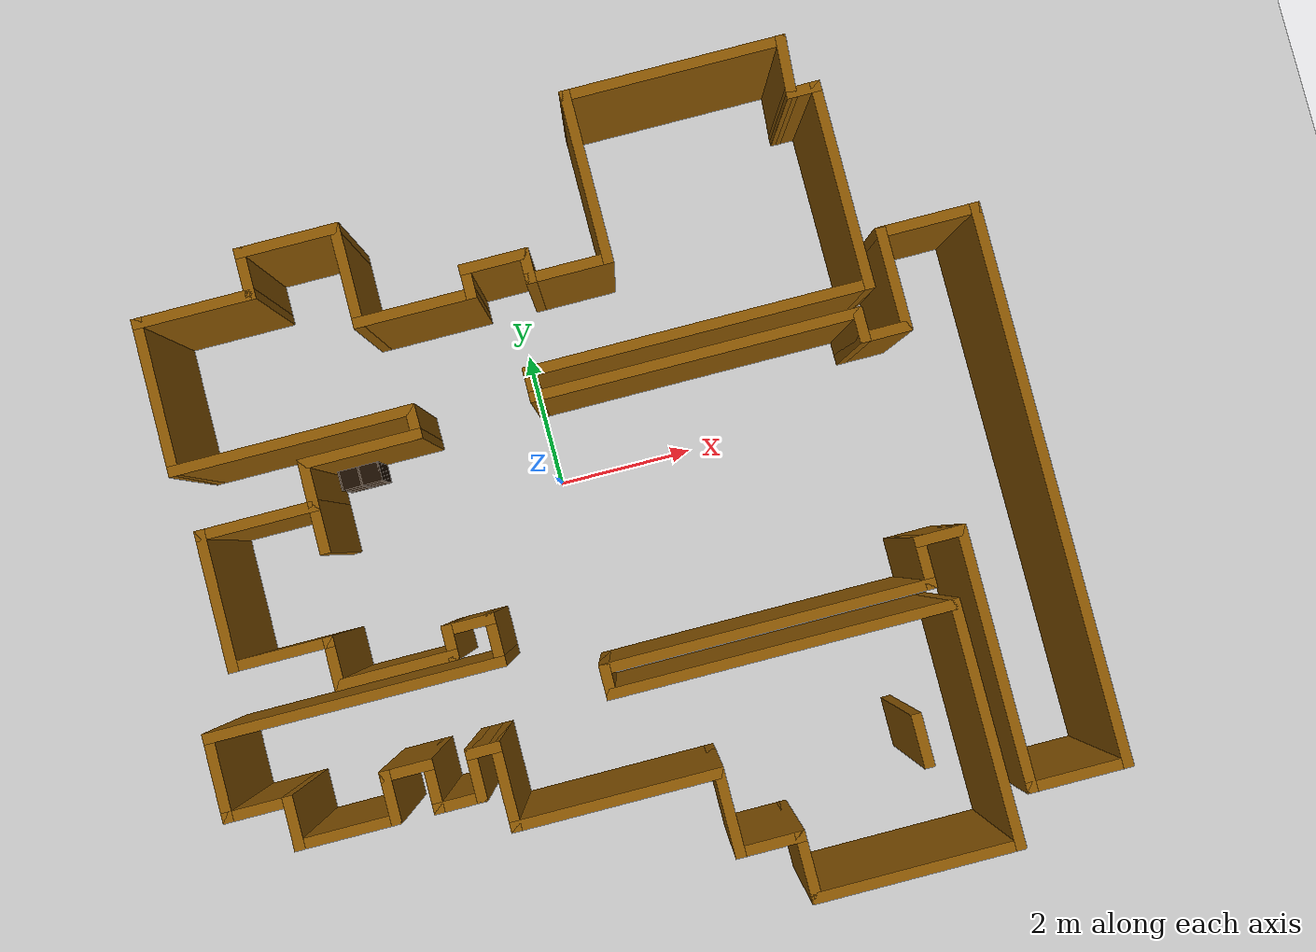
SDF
<sdf version="1.6">
 <world name="default">
  <light name="sun" type="directional">
   <pose>0 0 10 0 -0 0</pose>
   <diffuse>0.8 0.8 0.8 1</diffuse>
   <specular>0.2 0.2 0.2 1</specular>
   <attenuation>
    <range>1000</range>
    <constant>0.9</constant>
    <linear>0.01</linear>
    <quadratic>0.001</quadratic>
   </attenuation>
   <direction>-0.5 0.1 -0.9</direction>
  </light>
  <model name="ground_plane">
   <static>1</static>
   <link name="link">
    <collision name="collision">
     <geometry><plane><normal>0 0 1</normal><size>100 100</size></plane></geometry>
     <surface>
      <contact><collide_bitmask>65535</collide_bitmask></contact>
      <friction><ode><mu>100</mu><mu2>50</mu2></ode></friction>
     </surface>
    </collision>
    <visual name="visual">
     <cast_shadows>0</cast_shadows>
     <geometry><plane><normal>0 0 1</normal><size>100 100</size></plane></geometry>
     <material>
      <script><uri>file://media/materials/scripts/gazebo.material</uri><name>Gazebo/Grey</name></script>
     </material>
    </visual>
   </link>
  </model>
  <gravity>0 0 -9.8</gravity>
  <magnetic_field>6e-06 2.3e-05 -4.2e-05</magnetic_field>
  <atmosphere type="adiabatic"/>
  <physics name="default_physics" default="0" type="ode">
   <max_step_size>0.001</max_step_size>
   <real_time_factor>1</real_time_factor>
   <real_time_update_rate>1000</real_time_update_rate>
  </physics>
  <scene><ambient>0.4 0.4 0.4 1</ambient><background>0.7 0.7 0.7 1</background><shadows>1</shadows></scene>
  <audio><device>default</device></audio>
  <spherical_coordinates>
   <surface_model>EARTH_WGS84</surface_model>
   <latitude_deg>0</latitude_deg>
   <longitude_deg>0</longitude_deg>
   <elevation>0</elevation>
   <heading_deg>0</heading_deg>
  </spherical_coordinates>
  <model name="map_98">
   <pose>0.55784 -0.671296 0 0 -0 0</pose>
   <link name="Wall_0">
    <collision name="Wall_0_Collision">
     <geometry><box><size>3.25 0.15 2.5</size></box></geometry>
     <pose>0 0 1.25 0 -0 0</pose>
    </collision>
    <visual name="Wall_0_Visual">
     <pose>0 0 1.25 0 -0 0</pose>
     <geometry><box><size>3.25 0.15 2.5</size></box></geometry>
     <material>
      <script><uri>file://media/materials/scripts/gazebo.material</uri><name>Gazebo/Grey</name></script>
      <ambient>0.560784 0.34902 0.00784314 1</ambient>
     </material>
     <meta><layer>0</layer></meta>
    </visual>
    <pose>2.45 5.74759 0 0 -0 3.14159</pose>
   </link>
   <link name="Wall_1">
    <collision name="Wall_1_Collision">
     <geometry><box><size>2.5 0.15 2.5</size></box></geometry>
     <pose>0 0 1.25 0 -0 0</pose>
    </collision>
    <visual name="Wall_1_Visual">
     <pose>0 0 1.25 0 -0 0</pose>
     <geometry><box><size>2.5 0.15 2.5</size></box></geometry>
     <material>
      <script><uri>file://media/materials/scripts/gazebo.material</uri><name>Gazebo/Grey</name></script>
      <ambient>0.560784 0.34902 0.00784314 1</ambient>
     </material>
     <meta><layer>0</layer></meta>
    </visual>
    <pose>0.9 4.57259 0 0 -0 -1.5708</pose>
   </link>
   <link name="Wall_10">
    <collision name="Wall_10_Collision">
     <geometry><box><size>1.75 0.15 2.5</size></box></geometry>
     <pose>0 0 1.25 0 -0 0</pose>
    </collision>
    <visual name="Wall_10_Visual">
     <pose>0 0 1.25 0 -0 0</pose>
     <geometry><box><size>1.75 0.15 2.5</size></box></geometry>
     <material>
      <script><uri>file://media/materials/scripts/gazebo.material</uri><name>Gazebo/Grey</name></script>
      <ambient>0.560784 0.34902 0.00784314 1</ambient>
     </material>
     <meta><layer>0</layer></meta>
    </visual>
    <pose>-4.8 4.14759 0 0 -0 3.14159</pose>
   </link>
   <link name="Wall_11">
    <collision name="Wall_11_Collision">
     <geometry><box><size>2.25 0.15 2.5</size></box></geometry>
     <pose>0 0 1.25 0 -0 0</pose>
    </collision>
    <visual name="Wall_11_Visual">
     <pose>0 0 1.25 0 -0 0</pose>
     <geometry><box><size>2.25 0.15 2.5</size></box></geometry>
     <material>
      <script><uri>file://media/materials/scripts/gazebo.material</uri><name>Gazebo/Grey</name></script>
      <ambient>0.560784 0.34902 0.00784314 1</ambient>
     </material>
     <meta><layer>0</layer></meta>
    </visual>
    <pose>-5.6 3.09759 0 0 -0 -1.5708</pose>
   </link>
   <link name="Wall_12">
    <collision name="Wall_12_Collision">
     <geometry><box><size>3.5 0.15 2.5</size></box></geometry>
     <pose>0 0 1.25 0 -0 0</pose>
    </collision>
    <visual name="Wall_12_Visual">
     <pose>0 0 1.25 0 -0 0</pose>
     <geometry><box><size>3.5 0.15 2.5</size></box></geometry>
     <material>
      <script><uri>file://media/materials/scripts/gazebo.material</uri><name>Gazebo/Grey</name></script>
      <ambient>0.560784 0.34902 0.00784314 1</ambient>
     </material>
     <meta><layer>0</layer></meta>
    </visual>
    <pose>-3.925 2.04759 0 0 -0 0</pose>
   </link>
   <link name="Wall_13">
    <collision name="Wall_13_Collision">
     <geometry><box><size>0.5 0.15 2.5</size></box></geometry>
     <pose>0 0 1.25 0 -0 0</pose>
    </collision>
    <visual name="Wall_13_Visual">
     <pose>0 0 1.25 0 -0 0</pose>
     <geometry><box><size>0.5 0.15 2.5</size></box></geometry>
     <material>
      <script><uri>file://media/materials/scripts/gazebo.material</uri><name>Gazebo/Grey</name></script>
      <ambient>0.560784 0.34902 0.00784314 1</ambient>
     </material>
     <meta><layer>0</layer></meta>
    </visual>
    <pose>-2.25 1.87259 0 0 -0 -1.5708</pose>
   </link>
   <link name="Wall_14">
    <collision name="Wall_14_Collision">
     <geometry><box><size>1.75 0.15 2.5</size></box></geometry>
     <pose>0 0 1.25 0 -0 0</pose>
    </collision>
    <visual name="Wall_14_Visual">
     <pose>0 0 1.25 0 -0 0</pose>
     <geometry><box><size>1.75 0.15 2.5</size></box></geometry>
     <material>
      <script><uri>file://media/materials/scripts/gazebo.material</uri><name>Gazebo/Grey</name></script>
      <ambient>0.560784 0.34902 0.00784314 1</ambient>
     </material>
     <meta><layer>0</layer></meta>
    </visual>
    <pose>-3.05 1.69759 0 0 -0 3.14159</pose>
   </link>
   <link name="Wall_15">
    <collision name="Wall_15_Collision">
     <geometry><box><size>0.75 0.15 2.5</size></box></geometry>
     <pose>0 0 1.25 0 -0 0</pose>
    </collision>
    <visual name="Wall_15_Visual">
     <pose>0 0 1.25 0 -0 0</pose>
     <geometry><box><size>0.75 0.15 2.5</size></box></geometry>
     <material>
      <script><uri>file://media/materials/scripts/gazebo.material</uri><name>Gazebo/Grey</name></script>
      <ambient>0.560784 0.34902 0.00784314 1</ambient>
     </material>
     <meta><layer>0</layer></meta>
    </visual>
    <pose>-3.85 1.39759 0 0 -0 -1.5708</pose>
   </link>
   <link name="Wall_16">
    <collision name="Wall_16_Collision">
     <geometry><box><size>1.75 0.15 2.5</size></box></geometry>
     <pose>0 0 1.25 0 -0 0</pose>
    </collision>
    <visual name="Wall_16_Visual">
     <pose>0 0 1.25 0 -0 0</pose>
     <geometry><box><size>1.75 0.15 2.5</size></box></geometry>
     <material>
      <script><uri>file://media/materials/scripts/gazebo.material</uri><name>Gazebo/Grey</name></script>
      <ambient>0.560784 0.34902 0.00784314 1</ambient>
     </material>
     <meta><layer>0</layer></meta>
    </visual>
    <pose>-4.65 1.09759 0 0 -0 3.14159</pose>
   </link>
   <link name="Wall_17">
    <collision name="Wall_17_Collision">
     <geometry><box><size>2 0.15 2.5</size></box></geometry>
     <pose>0 0 1.25 0 -0 0</pose>
    </collision>
    <visual name="Wall_17_Visual">
     <pose>0 0 1.25 0 -0 0</pose>
     <geometry><box><size>2 0.15 2.5</size></box></geometry>
     <material>
      <script><uri>file://media/materials/scripts/gazebo.material</uri><name>Gazebo/Grey</name></script>
      <ambient>0.560784 0.34902 0.00784314 1</ambient>
     </material>
     <meta><layer>0</layer></meta>
    </visual>
    <pose>-5.45 0.172589 0 0 -0 -1.5708</pose>
   </link>
   <link name="Wall_18">
    <collision name="Wall_18_Collision">
     <geometry><box><size>1.5 0.15 2.5</size></box></geometry>
     <pose>0 0 1.25 0 -0 0</pose>
    </collision>
    <visual name="Wall_18_Visual">
     <pose>0 0 1.25 0 -0 0</pose>
     <geometry><box><size>1.5 0.15 2.5</size></box></geometry>
     <material>
      <script><uri>file://media/materials/scripts/gazebo.material</uri><name>Gazebo/Grey</name></script>
      <ambient>0.560784 0.34902 0.00784314 1</ambient>
     </material>
     <meta><layer>0</layer></meta>
    </visual>
    <pose>-4.775 -0.752411 0 0 -0 0</pose>
   </link>
   <link name="Wall_19">
    <collision name="Wall_19_Collision">
     <geometry><box><size>0.75 0.15 2.5</size></box></geometry>
     <pose>0 0 1.25 0 -0 0</pose>
    </collision>
    <visual name="Wall_19_Visual">
     <pose>0 0 1.25 0 -0 0</pose>
     <geometry><box><size>0.75 0.15 2.5</size></box></geometry>
     <material>
      <script><uri>file://media/materials/scripts/gazebo.material</uri><name>Gazebo/Grey</name></script>
      <ambient>0.560784 0.34902 0.00784314 1</ambient>
     </material>
     <meta><layer>0</layer></meta>
    </visual>
    <pose>-4.1 -1.05241 0 0 -0 -1.5708</pose>
   </link>
   <link name="Wall_2">
    <collision name="Wall_2_Collision">
     <geometry><box><size>1.25 0.15 2.5</size></box></geometry>
     <pose>0 0 1.25 0 -0 0</pose>
    </collision>
    <visual name="Wall_2_Visual">
     <pose>0 0 1.25 0 -0 0</pose>
     <geometry><box><size>1.25 0.15 2.5</size></box></geometry>
     <material>
      <script><uri>file://media/materials/scripts/gazebo.material</uri><name>Gazebo/Grey</name></script>
      <ambient>0.560784 0.34902 0.00784314 1</ambient>
     </material>
     <meta><layer>0</layer></meta>
    </visual>
    <pose>0.35 3.39759 0 0 -0 3.14159</pose>
   </link>
   <link name="Wall_20">
    <collision name="Wall_20_Collision">
     <geometry><box><size>1.75 0.15 2.5</size></box></geometry>
     <pose>0 0 1.25 0 -0 0</pose>
    </collision>
    <visual name="Wall_20_Visual">
     <pose>0 0 1.25 0 -0 0</pose>
     <geometry><box><size>1.75 0.15 2.5</size></box></geometry>
     <material>
      <script><uri>file://media/materials/scripts/gazebo.material</uri><name>Gazebo/Grey</name></script>
      <ambient>0.560784 0.34902 0.00784314 1</ambient>
     </material>
     <meta><layer>0</layer></meta>
    </visual>
    <pose>-3.3 -1.35241 0 0 -0 0</pose>
   </link>
   <link name="Wall_21">
    <collision name="Wall_21_Collision">
     <geometry><box><size>0.5 0.15 2.5</size></box></geometry>
     <pose>0 0 1.25 0 -0 0</pose>
    </collision>
    <visual name="Wall_21_Visual">
     <pose>0 0 1.25 0 -0 0</pose>
     <geometry><box><size>0.5 0.15 2.5</size></box></geometry>
     <material>
      <script><uri>file://media/materials/scripts/gazebo.material</uri><name>Gazebo/Grey</name></script>
      <ambient>0.560784 0.34902 0.00784314 1</ambient>
     </material>
     <meta><layer>0</layer></meta>
    </visual>
    <pose>-2.5 -1.17741 0 0 -0 1.5708</pose>
   </link>
   <link name="Wall_22">
    <collision name="Wall_22_Collision">
     <geometry><box><size>0.75 0.15 2.5</size></box></geometry>
     <pose>0 0 1.25 0 -0 0</pose>
    </collision>
    <visual name="Wall_22_Visual">
     <pose>0 0 1.25 0 -0 0</pose>
     <geometry><box><size>0.75 0.15 2.5</size></box></geometry>
     <material>
      <script><uri>file://media/materials/scripts/gazebo.material</uri><name>Gazebo/Grey</name></script>
      <ambient>0.560784 0.34902 0.00784314 1</ambient>
     </material>
     <meta><layer>0</layer></meta>
    </visual>
    <pose>-2.2 -1.00241 0 0 -0 0</pose>
   </link>
   <link name="Wall_23">
    <collision name="Wall_23_Collision">
     <geometry><box><size>0.75 0.15 2.5</size></box></geometry>
     <pose>0 0 1.25 0 -0 0</pose>
    </collision>
    <visual name="Wall_23_Visual">
     <pose>0 0 1.25 0 -0 0</pose>
     <geometry><box><size>0.75 0.15 2.5</size></box></geometry>
     <material>
      <script><uri>file://media/materials/scripts/gazebo.material</uri><name>Gazebo/Grey</name></script>
      <ambient>0.560784 0.34902 0.00784314 1</ambient>
     </material>
     <meta><layer>0</layer></meta>
    </visual>
    <pose>-1.9 -1.30241 0 0 -0 -1.5708</pose>
   </link>
   <link name="Wall_24">
    <collision name="Wall_24_Collision">
     <geometry><box><size>4.25 0.15 2.5</size></box></geometry>
     <pose>0 0 1.25 0 -0 0</pose>
    </collision>
    <visual name="Wall_24_Visual">
     <pose>0 0 1.25 0 -0 0</pose>
     <geometry><box><size>4.25 0.15 2.5</size></box></geometry>
     <material>
      <script><uri>file://media/materials/scripts/gazebo.material</uri><name>Gazebo/Grey</name></script>
      <ambient>0.560784 0.34902 0.00784314 1</ambient>
     </material>
     <meta><layer>0</layer></meta>
    </visual>
    <pose>-3.95 -1.60241 0 0 -0 3.14159</pose>
   </link>
   <link name="Wall_25">
    <collision name="Wall_25_Collision">
     <geometry><box><size>1.25 0.15 2.5</size></box></geometry>
     <pose>0 0 1.25 0 -0 0</pose>
    </collision>
    <visual name="Wall_25_Visual">
     <pose>0 0 1.25 0 -0 0</pose>
     <geometry><box><size>1.25 0.15 2.5</size></box></geometry>
     <material>
      <script><uri>file://media/materials/scripts/gazebo.material</uri><name>Gazebo/Grey</name></script>
      <ambient>0.560784 0.34902 0.00784314 1</ambient>
     </material>
     <meta><layer>0</layer></meta>
    </visual>
    <pose>-6 -2.15241 0 0 -0 -1.5708</pose>
   </link>
   <link name="Wall_26">
    <collision name="Wall_26_Collision">
     <geometry><box><size>1 0.15 2.5</size></box></geometry>
     <pose>0 0 1.25 0 -0 0</pose>
    </collision>
    <visual name="Wall_26_Visual">
     <pose>0 0 1.25 0 -0 0</pose>
     <geometry><box><size>1 0.15 2.5</size></box></geometry>
     <material>
      <script><uri>file://media/materials/scripts/gazebo.material</uri><name>Gazebo/Grey</name></script>
      <ambient>0.560784 0.34902 0.00784314 1</ambient>
     </material>
     <meta><layer>0</layer></meta>
    </visual>
    <pose>-5.575 -2.70241 0 0 -0 0</pose>
   </link>
   <link name="Wall_27">
    <collision name="Wall_27_Collision">
     <geometry><box><size>0.75 0.15 2.5</size></box></geometry>
     <pose>0 0 1.25 0 -0 0</pose>
    </collision>
    <visual name="Wall_27_Visual">
     <pose>0 0 1.25 0 -0 0</pose>
     <geometry><box><size>0.75 0.15 2.5</size></box></geometry>
     <material>
      <script><uri>file://media/materials/scripts/gazebo.material</uri><name>Gazebo/Grey</name></script>
      <ambient>0.560784 0.34902 0.00784314 1</ambient>
     </material>
     <meta><layer>0</layer></meta>
    </visual>
    <pose>-5.15 -3.00241 0 0 -0 -1.5708</pose>
   </link>
   <link name="Wall_28">
    <collision name="Wall_28_Collision">
     <geometry><box><size>1.5 0.15 2.5</size></box></geometry>
     <pose>0 0 1.25 0 -0 0</pose>
    </collision>
    <visual name="Wall_28_Visual">
     <pose>0 0 1.25 0 -0 0</pose>
     <geometry><box><size>1.5 0.15 2.5</size></box></geometry>
     <material>
      <script><uri>file://media/materials/scripts/gazebo.material</uri><name>Gazebo/Grey</name></script>
      <ambient>0.560784 0.34902 0.00784314 1</ambient>
     </material>
     <meta><layer>0</layer></meta>
    </visual>
    <pose>-4.475 -3.30241 0 0 -0 0</pose>
   </link>
   <link name="Wall_29">
    <collision name="Wall_29_Collision">
     <geometry><box><size>0.75 0.15 2.5</size></box></geometry>
     <pose>0 0 1.25 0 -0 0</pose>
    </collision>
    <visual name="Wall_29_Visual">
     <pose>0 0 1.25 0 -0 0</pose>
     <geometry><box><size>0.75 0.15 2.5</size></box></geometry>
     <material>
      <script><uri>file://media/materials/scripts/gazebo.material</uri><name>Gazebo/Grey</name></script>
      <ambient>0.560784 0.34902 0.00784314 1</ambient>
     </material>
     <meta><layer>0</layer></meta>
    </visual>
    <pose>-3.8 -3.00241 0 0 -0 1.5708</pose>
   </link>
   <link name="Wall_3">
    <collision name="Wall_3_Collision">
     <geometry><box><size>0.5 0.15 2.5</size></box></geometry>
     <pose>0 0 1.25 0 -0 0</pose>
    </collision>
    <visual name="Wall_3_Visual">
     <pose>0 0 1.25 0 -0 0</pose>
     <geometry><box><size>0.5 0.15 2.5</size></box></geometry>
     <material>
      <script><uri>file://media/materials/scripts/gazebo.material</uri><name>Gazebo/Grey</name></script>
      <ambient>0.560784 0.34902 0.00784314 1</ambient>
     </material>
     <meta><layer>0</layer></meta>
    </visual>
    <pose>-0.2 3.57259 0 0 -0 1.5708</pose>
   </link>
   <link name="Wall_30">
    <collision name="Wall_30_Collision">
     <geometry><box><size>0.75 0.15 2.5</size></box></geometry>
     <pose>0 0 1.25 0 -0 0</pose>
    </collision>
    <visual name="Wall_30_Visual">
     <pose>0 0 1.25 0 -0 0</pose>
     <geometry><box><size>0.75 0.15 2.5</size></box></geometry>
     <material>
      <script><uri>file://media/materials/scripts/gazebo.material</uri><name>Gazebo/Grey</name></script>
      <ambient>0.560784 0.34902 0.00784314 1</ambient>
     </material>
     <meta><layer>0</layer></meta>
    </visual>
    <pose>-3.5 -2.70241 0 0 -0 0</pose>
   </link>
   <link name="Wall_31">
    <collision name="Wall_31_Collision">
     <geometry><box><size>0.75 0.15 2.5</size></box></geometry>
     <pose>0 0 1.25 0 -0 0</pose>
    </collision>
    <visual name="Wall_31_Visual">
     <pose>0 0 1.25 0 -0 0</pose>
     <geometry><box><size>0.75 0.15 2.5</size></box></geometry>
     <material>
      <script><uri>file://media/materials/scripts/gazebo.material</uri><name>Gazebo/Grey</name></script>
      <ambient>0.560784 0.34902 0.00784314 1</ambient>
     </material>
     <meta><layer>0</layer></meta>
    </visual>
    <pose>-3.2 -3.00241 0 0 -0 -1.5708</pose>
   </link>
   <link name="Wall_32">
    <collision name="Wall_32_Collision">
     <geometry><box><size>0.75 0.15 2.5</size></box></geometry>
     <pose>0 0 1.25 0 -0 0</pose>
    </collision>
    <visual name="Wall_32_Visual">
     <pose>0 0 1.25 0 -0 0</pose>
     <geometry><box><size>0.75 0.15 2.5</size></box></geometry>
     <material>
      <script><uri>file://media/materials/scripts/gazebo.material</uri><name>Gazebo/Grey</name></script>
      <ambient>0.560784 0.34902 0.00784314 1</ambient>
     </material>
     <meta><layer>0</layer></meta>
    </visual>
    <pose>-2.9 -3.30241 0 0 -0 0</pose>
   </link>
   <link name="Wall_33">
    <collision name="Wall_33_Collision">
     <geometry><box><size>0.75 0.15 2.5</size></box></geometry>
     <pose>0 0 1.25 0 -0 0</pose>
    </collision>
    <visual name="Wall_33_Visual">
     <pose>0 0 1.25 0 -0 0</pose>
     <geometry><box><size>0.75 0.15 2.5</size></box></geometry>
     <material>
      <script><uri>file://media/materials/scripts/gazebo.material</uri><name>Gazebo/Grey</name></script>
      <ambient>0.560784 0.34902 0.00784314 1</ambient>
     </material>
     <meta><layer>0</layer></meta>
    </visual>
    <pose>-2.6 -3.00241 0 0 -0 1.5708</pose>
   </link>
   <link name="Wall_34">
    <collision name="Wall_34_Collision">
     <geometry><box><size>0.5 0.15 2.5</size></box></geometry>
     <pose>0 0 1.25 0 -0 0</pose>
    </collision>
    <visual name="Wall_34_Visual">
     <pose>0 0 1.25 0 -0 0</pose>
     <geometry><box><size>0.5 0.15 2.5</size></box></geometry>
     <material>
      <script><uri>file://media/materials/scripts/gazebo.material</uri><name>Gazebo/Grey</name></script>
      <ambient>0.560784 0.34902 0.00784314 1</ambient>
     </material>
     <meta><layer>0</layer></meta>
    </visual>
    <pose>-2.425 -2.70241 0 0 -0 0</pose>
   </link>
   <link name="Wall_38">
    <collision name="Wall_38_Collision">
     <geometry><box><size>1 0.15 2.5</size></box></geometry>
     <pose>0 0 1.25 0 -0 0</pose>
    </collision>
    <visual name="Wall_38_Visual">
     <pose>0 0 1.25 0 -0 0</pose>
     <geometry><box><size>1 0.15 2.5</size></box></geometry>
     <material>
      <script><uri>file://media/materials/scripts/gazebo.material</uri><name>Gazebo/Grey</name></script>
      <ambient>0.560784 0.34902 0.00784314 1</ambient>
     </material>
     <meta><layer>0</layer></meta>
    </visual>
    <pose>1.025 -4.90241 0 0 -0 0</pose>
   </link>
   <link name="Wall_39">
    <collision name="Wall_39_Collision">
     <geometry><box><size>1 0.15 2.5</size></box></geometry>
     <pose>0 0 1.25 0 -0 0</pose>
    </collision>
    <visual name="Wall_39_Visual">
     <pose>0 0 1.25 0 -0 0</pose>
     <geometry><box><size>1 0.15 2.5</size></box></geometry>
     <material>
      <script><uri>file://media/materials/scripts/gazebo.material</uri><name>Gazebo/Grey</name></script>
      <ambient>0.560784 0.34902 0.00784314 1</ambient>
     </material>
     <meta><layer>0</layer></meta>
    </visual>
    <pose>1.45 -5.32741 0 0 -0 -1.5708</pose>
   </link>
   <link name="Wall_4">
    <collision name="Wall_4_Collision">
     <geometry><box><size>1 0.15 2.5</size></box></geometry>
     <pose>0 0 1.25 0 -0 0</pose>
    </collision>
    <visual name="Wall_4_Visual">
     <pose>0 0 1.25 0 -0 0</pose>
     <geometry><box><size>1 0.15 2.5</size></box></geometry>
     <material>
      <script><uri>file://media/materials/scripts/gazebo.material</uri><name>Gazebo/Grey</name></script>
      <ambient>0.560784 0.34902 0.00784314 1</ambient>
     </material>
     <meta><layer>0</layer></meta>
    </visual>
    <pose>-0.625 3.74759 0 0 -0 3.14159</pose>
   </link>
   <link name="Wall_40">
    <collision name="Wall_40_Collision">
     <geometry><box><size>3 0.15 2.5</size></box></geometry>
     <pose>0 0 1.25 0 -0 0</pose>
    </collision>
    <visual name="Wall_40_Visual">
     <pose>0 0 1.25 0 -0 0</pose>
     <geometry><box><size>3 0.15 2.5</size></box></geometry>
     <material>
      <script><uri>file://media/materials/scripts/gazebo.material</uri><name>Gazebo/Grey</name></script>
      <ambient>0.560784 0.34902 0.00784314 1</ambient>
     </material>
     <meta><layer>0</layer></meta>
    </visual>
    <pose>2.875 -5.75241 0 0 -0 0</pose>
   </link>
   <link name="Wall_41">
    <collision name="Wall_41_Collision">
     <geometry><box><size>3.5 0.15 2.5</size></box></geometry>
     <pose>0 0 1.25 0 -0 0</pose>
    </collision>
    <visual name="Wall_41_Visual">
     <pose>0 0 1.25 0 -0 0</pose>
     <geometry><box><size>3.5 0.15 2.5</size></box></geometry>
     <material>
      <script><uri>file://media/materials/scripts/gazebo.material</uri><name>Gazebo/Grey</name></script>
      <ambient>0.560784 0.34902 0.00784314 1</ambient>
     </material>
     <meta><layer>0</layer></meta>
    </visual>
    <pose>4.3 -4.07741 0 0 -0 1.5708</pose>
   </link>
   <link name="Wall_42">
    <collision name="Wall_42_Collision">
     <geometry><box><size>5 0.15 2.5</size></box></geometry>
     <pose>0 0 1.25 0 -0 0</pose>
    </collision>
    <visual name="Wall_42_Visual">
     <pose>0 0 1.25 0 -0 0</pose>
     <geometry><box><size>5 0.15 2.5</size></box></geometry>
     <material>
      <script><uri>file://media/materials/scripts/gazebo.material</uri><name>Gazebo/Grey</name></script>
      <ambient>0.560784 0.34902 0.00784314 1</ambient>
     </material>
     <meta><layer>0</layer></meta>
    </visual>
    <pose>1.875 -2.40241 0 0 -0 3.14159</pose>
   </link>
   <link name="Wall_43">
    <collision name="Wall_43_Collision">
     <geometry><box><size>0.5 0.15 2.5</size></box></geometry>
     <pose>0 0 1.25 0 -0 0</pose>
    </collision>
    <visual name="Wall_43_Visual">
     <pose>0 0 1.25 0 -0 0</pose>
     <geometry><box><size>0.5 0.15 2.5</size></box></geometry>
     <material>
      <script><uri>file://media/materials/scripts/gazebo.material</uri><name>Gazebo/Grey</name></script>
      <ambient>0.560784 0.34902 0.00784314 1</ambient>
     </material>
     <meta><layer>0</layer></meta>
    </visual>
    <pose>-0.55 -2.22741 0 0 -0 1.5708</pose>
   </link>
   <link name="Wall_44">
    <collision name="Wall_44_Collision">
     <geometry><box><size>4.75 0.15 2.5</size></box></geometry>
     <pose>0 0 1.25 0 -0 0</pose>
    </collision>
    <visual name="Wall_44_Visual">
     <pose>0 0 1.25 0 -0 0</pose>
     <geometry><box><size>4.75 0.15 2.5</size></box></geometry>
     <material>
      <script><uri>file://media/materials/scripts/gazebo.material</uri><name>Gazebo/Grey</name></script>
      <ambient>0.560784 0.34902 0.00784314 1</ambient>
     </material>
     <meta><layer>0</layer></meta>
    </visual>
    <pose>1.75 -2.05241 0 0 -0 0</pose>
   </link>
   <link name="Wall_45">
    <collision name="Wall_45_Collision">
     <geometry><box><size>0.75 0.15 2.5</size></box></geometry>
     <pose>0 0 1.25 0 -0 0</pose>
    </collision>
    <visual name="Wall_45_Visual">
     <pose>0 0 1.25 0 -0 0</pose>
     <geometry><box><size>0.75 0.15 2.5</size></box></geometry>
     <material>
      <script><uri>file://media/materials/scripts/gazebo.material</uri><name>Gazebo/Grey</name></script>
      <ambient>0.560784 0.34902 0.00784314 1</ambient>
     </material>
     <meta><layer>0</layer></meta>
    </visual>
    <pose>4.05 -1.75241 0 0 -0 1.5708</pose>
   </link>
   <link name="Wall_46">
    <collision name="Wall_46_Collision">
     <geometry><box><size>0.75 0.15 2.5</size></box></geometry>
     <pose>0 0 1.25 0 -0 0</pose>
    </collision>
    <visual name="Wall_46_Visual">
     <pose>0 0 1.25 0 -0 0</pose>
     <geometry><box><size>0.75 0.15 2.5</size></box></geometry>
     <material>
      <script><uri>file://media/materials/scripts/gazebo.material</uri><name>Gazebo/Grey</name></script>
      <ambient>0.560784 0.34902 0.00784314 1</ambient>
     </material>
     <meta><layer>0</layer></meta>
    </visual>
    <pose>4.35 -1.45241 0 0 -0 0</pose>
   </link>
   <link name="Wall_47">
    <collision name="Wall_47_Collision">
     <geometry><box><size>3.75 0.15 2.5</size></box></geometry>
     <pose>0 0 1.25 0 -0 0</pose>
    </collision>
    <visual name="Wall_47_Visual">
     <pose>0 0 1.25 0 -0 0</pose>
     <geometry><box><size>3.75 0.15 2.5</size></box></geometry>
     <material>
      <script><uri>file://media/materials/scripts/gazebo.material</uri><name>Gazebo/Grey</name></script>
      <ambient>0.560784 0.34902 0.00784314 1</ambient>
     </material>
     <meta><layer>0</layer></meta>
    </visual>
    <pose>4.65 -3.25241 0 0 -0 -1.5708</pose>
   </link>
   <link name="Wall_48">
    <collision name="Wall_48_Collision">
     <geometry><box><size>1.5 0.15 2.5</size></box></geometry>
     <pose>0 0 1.25 0 -0 0</pose>
    </collision>
    <visual name="Wall_48_Visual">
     <pose>0 0 1.25 0 -0 0</pose>
     <geometry><box><size>1.5 0.15 2.5</size></box></geometry>
     <material>
      <script><uri>file://media/materials/scripts/gazebo.material</uri><name>Gazebo/Grey</name></script>
      <ambient>0.560784 0.34902 0.00784314 1</ambient>
     </material>
     <meta><layer>0</layer></meta>
    </visual>
    <pose>5.325 -5.05241 0 0 -0 0</pose>
   </link>
   <link name="Wall_49">
    <collision name="Wall_49_Collision">
     <geometry><box><size>8 0.15 2.5</size></box></geometry>
     <pose>0 0 1.25 0 -0 0</pose>
    </collision>
    <visual name="Wall_49_Visual">
     <pose>0 0 1.25 0 -0 0</pose>
     <geometry><box><size>8 0.15 2.5</size></box></geometry>
     <material>
      <script><uri>file://media/materials/scripts/gazebo.material</uri><name>Gazebo/Grey</name></script>
      <ambient>0.560784 0.34902 0.00784314 1</ambient>
     </material>
     <meta><layer>0</layer></meta>
    </visual>
    <pose>6 -1.12741 0 0 -0 1.5708</pose>
   </link>
   <link name="Wall_5">
    <collision name="Wall_5_Collision">
     <geometry><box><size>0.5 0.15 2.5</size></box></geometry>
     <pose>0 0 1.25 0 -0 0</pose>
    </collision>
    <visual name="Wall_5_Visual">
     <pose>0 0 1.25 0 -0 0</pose>
     <geometry><box><size>0.5 0.15 2.5</size></box></geometry>
     <material>
      <script><uri>file://media/materials/scripts/gazebo.material</uri><name>Gazebo/Grey</name></script>
      <ambient>0.560784 0.34902 0.00784314 1</ambient>
     </material>
     <meta><layer>0</layer></meta>
    </visual>
    <pose>-1.05 3.57259 0 0 -0 -1.5708</pose>
   </link>
   <link name="Wall_50">
    <collision name="Wall_50_Collision">
     <geometry><box><size>1.5 0.15 2.5</size></box></geometry>
     <pose>0 0 1.25 0 -0 0</pose>
    </collision>
    <visual name="Wall_50_Visual">
     <pose>0 0 1.25 0 -0 0</pose>
     <geometry><box><size>1.5 0.15 2.5</size></box></geometry>
     <material>
      <script><uri>file://media/materials/scripts/gazebo.material</uri><name>Gazebo/Grey</name></script>
      <ambient>0.560784 0.34902 0.00784314 1</ambient>
     </material>
     <meta><layer>0</layer></meta>
    </visual>
    <pose>5.325 2.79759 0 0 -0 3.14159</pose>
   </link>
   <link name="Wall_51">
    <collision name="Wall_51_Collision">
     <geometry><box><size>1.5 0.15 2.5</size></box></geometry>
     <pose>0 0 1.25 0 -0 0</pose>
    </collision>
    <visual name="Wall_51_Visual">
     <pose>0 0 1.25 0 -0 0</pose>
     <geometry><box><size>1.5 0.15 2.5</size></box></geometry>
     <material>
      <script><uri>file://media/materials/scripts/gazebo.material</uri><name>Gazebo/Grey</name></script>
      <ambient>0.560784 0.34902 0.00784314 1</ambient>
     </material>
     <meta><layer>0</layer></meta>
    </visual>
    <pose>4.65 2.12259 0 0 -0 -1.5708</pose>
   </link>
   <link name="Wall_54">
    <collision name="Wall_54_Collision">
     <geometry><box><size>0.75 0.15 2.5</size></box></geometry>
     <pose>0 0 1.25 0 -0 0</pose>
    </collision>
    <visual name="Wall_54_Visual">
     <pose>0 0 1.25 0 -0 0</pose>
     <geometry><box><size>0.75 0.15 2.5</size></box></geometry>
     <material>
      <script><uri>file://media/materials/scripts/gazebo.material</uri><name>Gazebo/Grey</name></script>
      <ambient>0.560784 0.34902 0.00784314 1</ambient>
     </material>
     <meta><layer>0</layer></meta>
    </visual>
    <pose>4.35 1.44759 0 0 -0 3.14159</pose>
   </link>
   <link name="Wall_55">
    <collision name="Wall_55_Collision">
     <geometry><box><size>0.5 0.15 2.5</size></box></geometry>
     <pose>0 0 1.25 0 -0 0</pose>
    </collision>
    <visual name="Wall_55_Visual">
     <pose>0 0 1.25 0 -0 0</pose>
     <geometry><box><size>0.5 0.15 2.5</size></box></geometry>
     <material>
      <script><uri>file://media/materials/scripts/gazebo.material</uri><name>Gazebo/Grey</name></script>
      <ambient>0.560784 0.34902 0.00784314 1</ambient>
     </material>
     <meta><layer>0</layer></meta>
    </visual>
    <pose>4.05 1.62259 0 0 -0 1.5708</pose>
   </link>
   <link name="Wall_56">
    <collision name="Wall_56_Collision">
     <geometry><box><size>4.75 0.15 2.5</size></box></geometry>
     <pose>0 0 1.25 0 -0 0</pose>
    </collision>
    <visual name="Wall_56_Visual">
     <pose>0 0 1.25 0 -0 0</pose>
     <geometry><box><size>4.75 0.15 2.5</size></box></geometry>
     <material>
      <script><uri>file://media/materials/scripts/gazebo.material</uri><name>Gazebo/Grey</name></script>
      <ambient>0.560784 0.34902 0.00784314 1</ambient>
     </material>
     <meta><layer>0</layer></meta>
    </visual>
    <pose>1.75 1.79759 0 0 -0 3.14159</pose>
   </link>
   <link name="Wall_57">
    <collision name="Wall_57_Collision">
     <geometry><box><size>0.5 0.15 2.5</size></box></geometry>
     <pose>0 0 1.25 0 -0 0</pose>
    </collision>
    <visual name="Wall_57_Visual">
     <pose>0 0 1.25 0 -0 0</pose>
     <geometry><box><size>0.5 0.15 2.5</size></box></geometry>
     <material>
      <script><uri>file://media/materials/scripts/gazebo.material</uri><name>Gazebo/Grey</name></script>
      <ambient>0.560784 0.34902 0.00784314 1</ambient>
     </material>
     <meta><layer>0</layer></meta>
    </visual>
    <pose>-0.55 1.97259 0 0 -0 1.5708</pose>
   </link>
   <link name="Wall_58">
    <collision name="Wall_58_Collision">
     <geometry><box><size>5 0.15 2.5</size></box></geometry>
     <pose>0 0 1.25 0 -0 0</pose>
    </collision>
    <visual name="Wall_58_Visual">
     <pose>0 0 1.25 0 -0 0</pose>
     <geometry><box><size>5 0.15 2.5</size></box></geometry>
     <material>
      <script><uri>file://media/materials/scripts/gazebo.material</uri><name>Gazebo/Grey</name></script>
      <ambient>0.560784 0.34902 0.00784314 1</ambient>
     </material>
     <meta><layer>0</layer></meta>
    </visual>
    <pose>1.875 2.14759 0 0 -0 0</pose>
   </link>
   <link name="Wall_59">
    <collision name="Wall_59_Collision">
     <geometry><box><size>3 0.15 2.5</size></box></geometry>
     <pose>0 0 1.25 0 -0 0</pose>
    </collision>
    <visual name="Wall_59_Visual">
     <pose>0 0 1.25 0 -0 0</pose>
     <geometry><box><size>3 0.15 2.5</size></box></geometry>
     <material>
      <script><uri>file://media/materials/scripts/gazebo.material</uri><name>Gazebo/Grey</name></script>
      <ambient>0.560784 0.34902 0.00784314 1</ambient>
     </material>
     <meta><layer>0</layer></meta>
    </visual>
    <pose>4.3 3.57259 0 0 -0 1.5708</pose>
   </link>
   <link name="Wall_6">
    <collision name="Wall_6_Collision">
     <geometry><box><size>1.75 0.15 2.5</size></box></geometry>
     <pose>0 0 1.25 0 -0 0</pose>
    </collision>
    <visual name="Wall_6_Visual">
     <pose>0 0 1.25 0 -0 0</pose>
     <geometry><box><size>1.75 0.15 2.5</size></box></geometry>
     <material>
      <script><uri>file://media/materials/scripts/gazebo.material</uri><name>Gazebo/Grey</name></script>
      <ambient>0.560784 0.34902 0.00784314 1</ambient>
     </material>
     <meta><layer>0</layer></meta>
    </visual>
    <pose>-1.85 3.39759 0 0 -0 3.14159</pose>
   </link>
   <link name="Wall_60">
    <collision name="Wall_60_Collision">
     <geometry><box><size>0.5 0.15 2.5</size></box></geometry>
     <pose>0 0 1.25 0 -0 0</pose>
    </collision>
    <visual name="Wall_60_Visual">
     <pose>0 0 1.25 0 -0 0</pose>
     <geometry><box><size>0.5 0.15 2.5</size></box></geometry>
     <material>
      <script><uri>file://media/materials/scripts/gazebo.material</uri><name>Gazebo/Grey</name></script>
      <ambient>0.560784 0.34902 0.00784314 1</ambient>
     </material>
     <meta><layer>0</layer></meta>
    </visual>
    <pose>4.125 4.99759 0 0 -0 3.14159</pose>
   </link>
   <link name="Wall_61">
    <collision name="Wall_61_Collision">
     <geometry><box><size>0.901665 0.15 2.5</size></box></geometry>
     <pose>0 0 1.25 0 -0 0</pose>
    </collision>
    <visual name="Wall_61_Visual">
     <pose>0 0 1.25 0 -0 0</pose>
     <geometry><box><size>0.901665 0.15 2.5</size></box></geometry>
     <material>
      <script><uri>file://media/materials/scripts/gazebo.material</uri><name>Gazebo/Grey</name></script>
      <ambient>0.560784 0.34902 0.00784314 1</ambient>
     </material>
     <meta><layer>0</layer></meta>
    </visual>
    <pose>3.975 5.37259 0 0 -0 1.50423</pose>
   </link>
   <link name="Wall_63">
    <collision name="Wall_63_Collision">
     <geometry><box><size>1.25 0.15 2.5</size></box></geometry>
     <pose>0 0 1.25 0 -0 0</pose>
    </collision>
    <visual name="Wall_63_Visual">
     <pose>0 0 1.25 0 -0 0</pose>
     <geometry><box><size>1.25 0.15 2.5</size></box></geometry>
     <material>
      <script><uri>file://media/materials/scripts/gazebo.material</uri><name>Gazebo/Grey</name></script>
      <ambient>0.560784 0.34902 0.00784314 1</ambient>
     </material>
     <meta><layer>0</layer></meta>
    </visual>
    <pose>-2.25 -3.25241 0 0 -0 -1.5708</pose>
   </link>
   <link name="Wall_64">
    <collision name="Wall_64_Collision">
     <geometry><box><size>3 0.15 2.5</size></box></geometry>
     <pose>0 0 1.25 0 -0 0</pose>
    </collision>
    <visual name="Wall_64_Visual">
     <pose>0 0 1.25 0 -0 0</pose>
     <geometry><box><size>3 0.15 2.5</size></box></geometry>
     <material>
      <script><uri>file://media/materials/scripts/gazebo.material</uri><name>Gazebo/Grey</name></script>
      <ambient>0.560784 0.34902 0.00784314 1</ambient>
     </material>
     <meta><layer>0</layer></meta>
    </visual>
    <pose>-0.825 -3.80241 0 0 -0 0</pose>
   </link>
   <link name="Wall_65">
    <collision name="Wall_65_Collision">
     <geometry><box><size>1.25 0.15 2.5</size></box></geometry>
     <pose>0 0 1.25 0 -0 0</pose>
    </collision>
    <visual name="Wall_65_Visual">
     <pose>0 0 1.25 0 -0 0</pose>
     <geometry><box><size>1.25 0.15 2.5</size></box></geometry>
     <material>
      <script><uri>file://media/materials/scripts/gazebo.material</uri><name>Gazebo/Grey</name></script>
      <ambient>0.560784 0.34902 0.00784314 1</ambient>
     </material>
     <meta><layer>0</layer></meta>
    </visual>
    <pose>0.6 -4.35241 0 0 -0 -1.5708</pose>
   </link>
   <link name="Wall_67">
    <collision name="Wall_67_Collision">
     <geometry><box><size>0.75 0.15 2.5</size></box></geometry>
     <pose>0 0 1.25 0 -0 0</pose>
    </collision>
    <visual name="Wall_67_Visual">
     <pose>0 0 1.25 0 -0 0</pose>
     <geometry><box><size>0.75 0.15 2.5</size></box></geometry>
     <material>
      <script><uri>file://media/materials/scripts/gazebo.material</uri><name>Gazebo/Grey</name></script>
      <ambient>0.560784 0.34902 0.00784314 1</ambient>
     </material>
     <meta><layer>0</layer></meta>
    </visual>
    <pose>-3.85 0.797589 0 0 -0 -1.5708</pose>
   </link>
   <link name="Wall_69">
    <collision name="Wall_69_Collision">
     <geometry><box><size>0.75 0.15 2.5</size></box></geometry>
     <pose>0 0 1.25 0 -0 0</pose>
    </collision>
    <visual name="Wall_69_Visual">
     <pose>0 0 1.25 0 -0 0</pose>
     <geometry><box><size>0.75 0.15 2.5</size></box></geometry>
     <material>
      <script><uri>file://media/materials/scripts/gazebo.material</uri><name>Gazebo/Grey</name></script>
      <ambient>0.560784 0.34902 0.00784314 1</ambient>
     </material>
     <meta><layer>0</layer></meta>
    </visual>
    <pose>3.3882 -4.07528 0 0 -0 -1.5708</pose>
   </link>
   <link name="Wall_7">
    <collision name="Wall_7_Collision">
     <geometry><box><size>1.5 0.15 2.5</size></box></geometry>
     <pose>0 0 1.25 0 -0 0</pose>
    </collision>
    <visual name="Wall_7_Visual">
     <pose>0 0 1.25 0 -0 0</pose>
     <geometry><box><size>1.5 0.15 2.5</size></box></geometry>
     <material>
      <script><uri>file://media/materials/scripts/gazebo.material</uri><name>Gazebo/Grey</name></script>
      <ambient>0.560784 0.34902 0.00784314 1</ambient>
     </material>
     <meta><layer>0</layer></meta>
    </visual>
    <pose>-2.65 4.07259 0 0 -0 1.5708</pose>
   </link>
   <link name="Wall_8">
    <collision name="Wall_8_Collision">
     <geometry><box><size>1.5 0.15 2.5</size></box></geometry>
     <pose>0 0 1.25 0 -0 0</pose>
    </collision>
    <visual name="Wall_8_Visual">
     <pose>0 0 1.25 0 -0 0</pose>
     <geometry><box><size>1.5 0.15 2.5</size></box></geometry>
     <material>
      <script><uri>file://media/materials/scripts/gazebo.material</uri><name>Gazebo/Grey</name></script>
      <ambient>0.560784 0.34902 0.00784314 1</ambient>
     </material>
     <meta><layer>0</layer></meta>
    </visual>
    <pose>-3.325 4.74759 0 0 -0 3.14159</pose>
   </link>
   <link name="Wall_9">
    <collision name="Wall_9_Collision">
     <geometry><box><size>0.75 0.15 2.5</size></box></geometry>
     <pose>0 0 1.25 0 -0 0</pose>
    </collision>
    <visual name="Wall_9_Visual">
     <pose>0 0 1.25 0 -0 0</pose>
     <geometry><box><size>0.75 0.15 2.5</size></box></geometry>
     <material>
      <script><uri>file://media/materials/scripts/gazebo.material</uri><name>Gazebo/Grey</name></script>
      <ambient>0.560784 0.34902 0.00784314 1</ambient>
     </material>
     <meta><layer>0</layer></meta>
    </visual>
    <pose>-4 4.44759 0 0 -0 -1.5708</pose>
   </link>
   <static>1</static>
  </model>
  <model name="6_Cube_StorageE">
   <link name="Wall_0">
    <pose>0 0 0.01 0 -0 0</pose>
    <inertial>
     <mass>1.6201</mass>
     <inertia><ixx>0.0119</ixx><iyy>0.0631</iyy><izz>0.0513</izz><ixy>0</ixy><ixz>0</ixz><iyz>0</iyz></inertia>
    </inertial>
    <collision name="Wall_0_Collision"><geometry><box><size>0.616 0.296 0.02</size></box></geometry></collision>
    <visual name="Wall_0_Visual">
     <geometry><box><size>0.616 0.296 0.02</size></box></geometry>
     <material>
      <script><uri>file://media/materials/scripts/gazebo.material</uri><name>Gazebo/Grey</name></script>
      <ambient>0.105882 0.0509804 0 1</ambient>
     </material>
    </visual>
   </link>
   <joint name="0_2" type="fixed">
    <pose>-0.308 0 0 0 -0 0</pose>
    <parent>Wall_2</parent>
    <child>Wall_0</child>
    <axis>
     <xyz>1 0 0</xyz>
     <use_parent_model_frame>0</use_parent_model_frame>
     <limit><lower>-1e+16</lower><upper>1e+16</upper></limit>
    </axis>
   </joint>
   <joint name="0_12" type="fixed">
    <parent>Wall_12</parent>
    <child>Wall_0</child>
    <axis>
     <xyz>0 0 1</xyz>
     <use_parent_model_frame>0</use_parent_model_frame>
     <limit><lower>-1e+16</lower><upper>1e+16</upper></limit>
    </axis>
   </joint>
   <joint name="0_4" type="fixed">
    <pose>0.308 0 0 0 -0 0</pose>
    <parent>Wall_4</parent>
    <child>Wall_0</child>
    <axis>
     <xyz>1 0 0</xyz>
     <use_parent_model_frame>0</use_parent_model_frame>
     <limit><lower>-1e+16</lower><upper>1e+16</upper></limit>
    </axis>
   </joint>
   <link name="Wall_10">
    <pose>0 0 0.61 0 -0 0</pose>
    <inertial>
     <mass>1.6201</mass>
     <inertia><ixx>0.0119</ixx><iyy>0.0631</iyy><izz>0.0513</izz><ixy>0</ixy><ixz>0</ixz><iyz>0</iyz></inertia>
    </inertial>
    <collision name="Wall_10_Collision"><geometry><box><size>0.616 0.296 0.02</size></box></geometry></collision>
    <visual name="Wall_10_Visual">
     <geometry><box><size>0.616 0.296 0.02</size></box></geometry>
     <material>
      <script><uri>file://media/materials/scripts/gazebo.material</uri><name>Gazebo/Grey</name></script>
      <ambient>0.105882 0.0509804 0 1</ambient>
     </material>
    </visual>
   </link>
   <joint name="10_2" type="fixed">
    <pose>-0.308 0 0 0 -0 0</pose>
    <parent>Wall_2</parent>
    <child>Wall_10</child>
    <axis>
     <xyz>1 0 0</xyz>
     <use_parent_model_frame>0</use_parent_model_frame>
     <limit><lower>-1e+16</lower><upper>1e+16</upper></limit>
    </axis>
   </joint>
   <joint name="10_12" type="fixed">
    <parent>Wall_12</parent>
    <child>Wall_10</child>
    <axis>
     <xyz>0 0 1</xyz>
     <use_parent_model_frame>0</use_parent_model_frame>
     <limit><lower>-1e+16</lower><upper>1e+16</upper></limit>
    </axis>
   </joint>
   <joint name="10_4" type="fixed">
    <pose>0.308 0 0 0 -0 0</pose>
    <parent>Wall_4</parent>
    <child>Wall_10</child>
    <axis>
     <xyz>1 0 0</xyz>
     <use_parent_model_frame>0</use_parent_model_frame>
     <limit><lower>-1e+16</lower><upper>1e+16</upper></limit>
    </axis>
   </joint>
   <link name="Wall_12">
    <pose>0 0 0.4575 0 -0 0</pose>
    <inertial>
     <mass>2.4065</mass>
     <inertia><ixx>0.0177</ixx><iyy>0.1855</iyy><izz>0.168</izz><ixy>0</ixy><ixz>0</ixz><iyz>0</iyz></inertia>
    </inertial>
    <collision name="Wall_12_Collision"><geometry><box><size>0.02 0.296 0.915</size></box></geometry></collision>
    <visual name="Wall_12_Visual">
     <geometry><box><size>0.02 0.296 0.915</size></box></geometry>
     <material>
      <script><uri>file://media/materials/scripts/gazebo.material</uri><name>Gazebo/Grey</name></script>
      <ambient>0.105882 0.0509804 0 1</ambient>
     </material>
    </visual>
   </link>
   <link name="Wall_2">
    <pose>-0.298 0 0.4575 0 -0 0</pose>
    <inertial>
     <mass>2.4065</mass>
     <inertia><ixx>0.0177</ixx><iyy>0.1855</iyy><izz>0.168</izz><ixy>0</ixy><ixz>0</ixz><iyz>0</iyz></inertia>
    </inertial>
    <collision name="Wall_2_Collision"><geometry><box><size>0.02 0.296 0.915</size></box></geometry></collision>
    <visual name="Wall_2_Visual">
     <geometry><box><size>0.02 0.296 0.915</size></box></geometry>
     <material>
      <script><uri>file://media/materials/scripts/gazebo.material</uri><name>Gazebo/Grey</name></script>
      <ambient>0.105882 0.0509804 0 1</ambient>
     </material>
    </visual>
   </link>
   <link name="Wall_4">
    <pose>0.298 0 0.4575 0 -0 0</pose>
    <inertial>
     <mass>2.4065</mass>
     <inertia><ixx>0.0177</ixx><iyy>0.1855</iyy><izz>0.168</izz><ixy>0</ixy><ixz>0</ixz><iyz>0</iyz></inertia>
    </inertial>
    <collision name="Wall_4_Collision"><geometry><box><size>0.02 0.296 0.915</size></box></geometry></collision>
    <visual name="Wall_4_Visual">
     <geometry><box><size>0.02 0.296 0.915</size></box></geometry>
     <material>
      <script><uri>file://media/materials/scripts/gazebo.material</uri><name>Gazebo/Grey</name></script>
      <ambient>0.105882 0.0509804 0 1</ambient>
     </material>
    </visual>
   </link>
   <link name="Wall_6">
    <pose>0 0 0.905 0 -0 0</pose>
    <inertial>
     <mass>1.6201</mass>
     <inertia><ixx>0.0119</ixx><iyy>0.0631</iyy><izz>0.0513</izz><ixy>0</ixy><ixz>0</ixz><iyz>0</iyz></inertia>
    </inertial>
    <collision name="Wall_6_Collision"><geometry><box><size>0.616 0.296 0.02</size></box></geometry></collision>
    <visual name="Wall_6_Visual">
     <geometry><box><size>0.616 0.296 0.02</size></box></geometry>
     <material>
      <script><uri>file://media/materials/scripts/gazebo.material</uri><name>Gazebo/Grey</name></script>
      <ambient>0.105882 0.0509804 0 1</ambient>
     </material>
    </visual>
   </link>
   <joint name="6_2" type="fixed">
    <pose>-0.308 0 0 0 -0 0</pose>
    <parent>Wall_2</parent>
    <child>Wall_6</child>
    <axis>
     <xyz>2 0 0</xyz>
     <use_parent_model_frame>0</use_parent_model_frame>
     <limit><lower>-1e+16</lower><upper>1e+16</upper></limit>
    </axis>
   </joint>
   <joint name="6_12" type="fixed">
    <parent>Wall_12</parent>
    <child>Wall_6</child>
    <axis>
     <xyz>0 0 1</xyz>
     <use_parent_model_frame>0</use_parent_model_frame>
     <limit><lower>-1e+16</lower><upper>1e+16</upper></limit>
    </axis>
   </joint>
   <joint name="6_4" type="fixed">
    <pose>0.308 0 0 0 -0 0</pose>
    <parent>Wall_4</parent>
    <child>Wall_6</child>
    <axis>
     <xyz>1 0 0</xyz>
     <use_parent_model_frame>0</use_parent_model_frame>
     <limit><lower>-1e+16</lower><upper>1e+16</upper></limit>
    </axis>
   </joint>
   <link name="Wall_8">
    <pose>0 0 0.305 0 -0 0</pose>
    <inertial>
     <mass>1.6201</mass>
     <inertia><ixx>0.0119</ixx><iyy>0.0631</iyy><izz>0.0513</izz><ixy>0</ixy><ixz>0</ixz><iyz>0</iyz></inertia>
    </inertial>
    <collision name="Wall_8_Collision"><geometry><box><size>0.616 0.296 0.02</size></box></geometry></collision>
    <visual name="Wall_8_Visual">
     <geometry><box><size>0.616 0.296 0.02</size></box></geometry>
     <material>
      <script><uri>file://media/materials/scripts/gazebo.material</uri><name>Gazebo/Grey</name></script>
      <ambient>0.105882 0.0509804 0 1</ambient>
     </material>
    </visual>
   </link>
   <joint name="8_2" type="fixed">
    <pose>-0.308 0 0 0 -0 0</pose>
    <parent>Wall_2</parent>
    <child>Wall_8</child>
    <axis>
     <xyz>1 0 0</xyz>
     <use_parent_model_frame>0</use_parent_model_frame>
     <limit><lower>-1e+16</lower><upper>1e+16</upper></limit>
    </axis>
   </joint>
   <joint name="8_12" type="fixed">
    <parent>Wall_12</parent>
    <child>Wall_8</child>
    <axis>
     <xyz>0 0 1</xyz>
     <use_parent_model_frame>0</use_parent_model_frame>
     <limit><lower>-1e+16</lower><upper>1e+16</upper></limit>
    </axis>
   </joint>
   <joint name="8_4" type="fixed">
    <pose>0.308 0 0 0 -0 0</pose>
    <parent>Wall_4</parent>
    <child>Wall_8</child>
    <axis>
     <xyz>1 0 0</xyz>
     <use_parent_model_frame>0</use_parent_model_frame>
     <limit><lower>-1e+16</lower><upper>1e+16</upper></limit>
    </axis>
   </joint>
   <static>1</static>
   <pose>-2.82935 0.813337 0 0 -0 0</pose>
  </model>
 </world>
</sdf>
